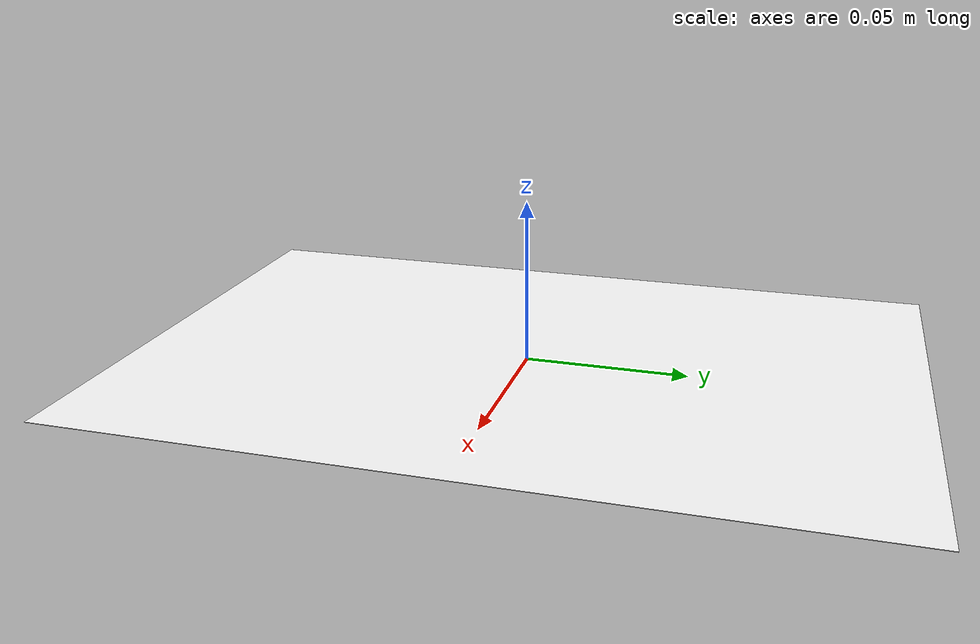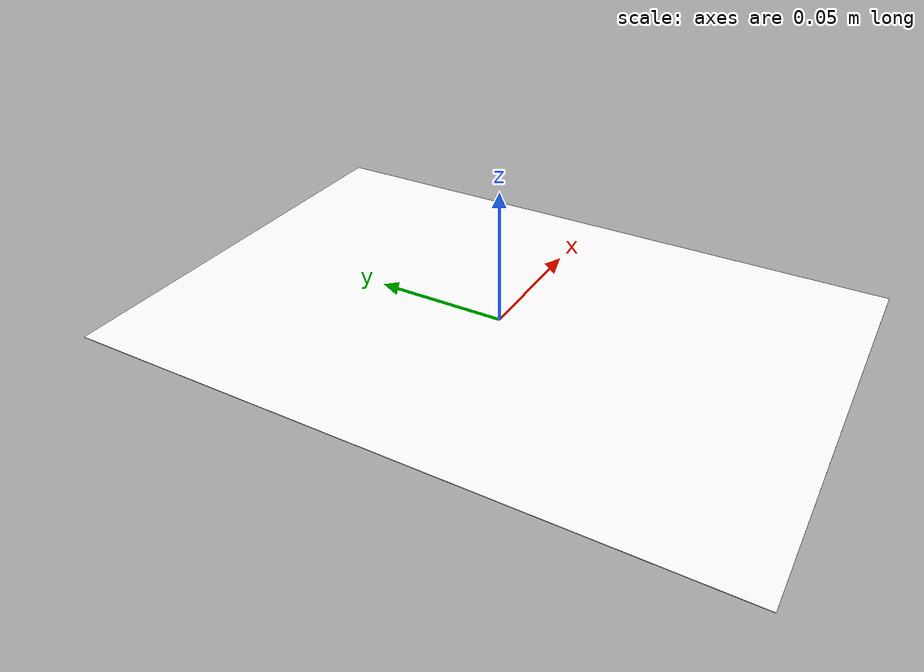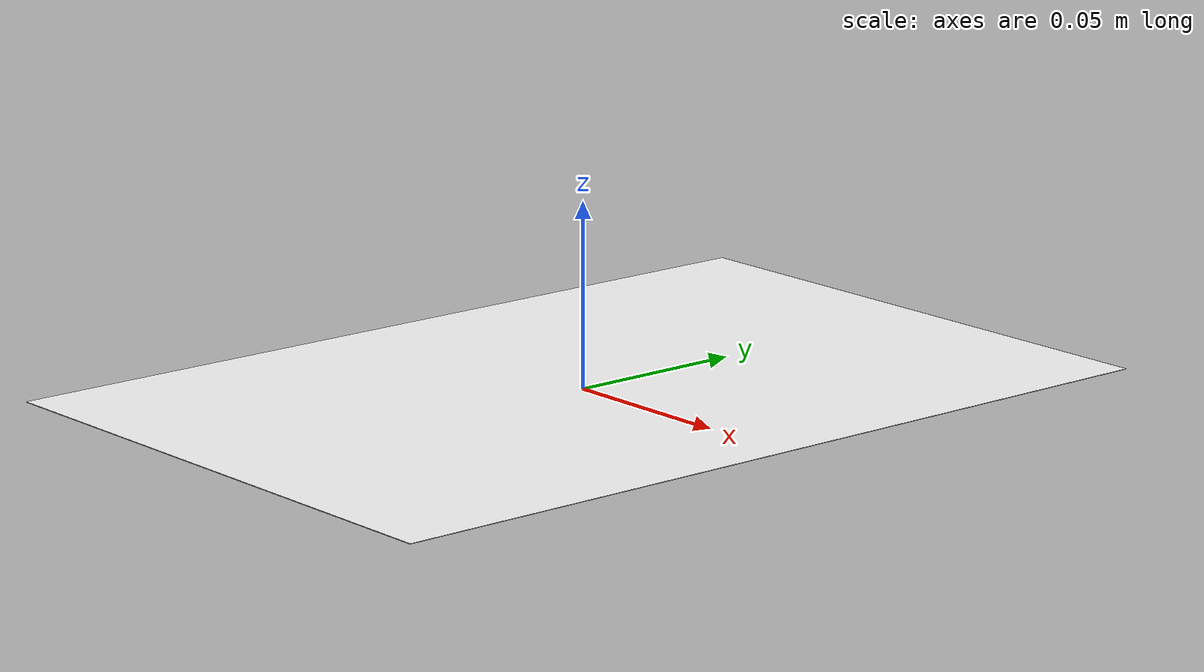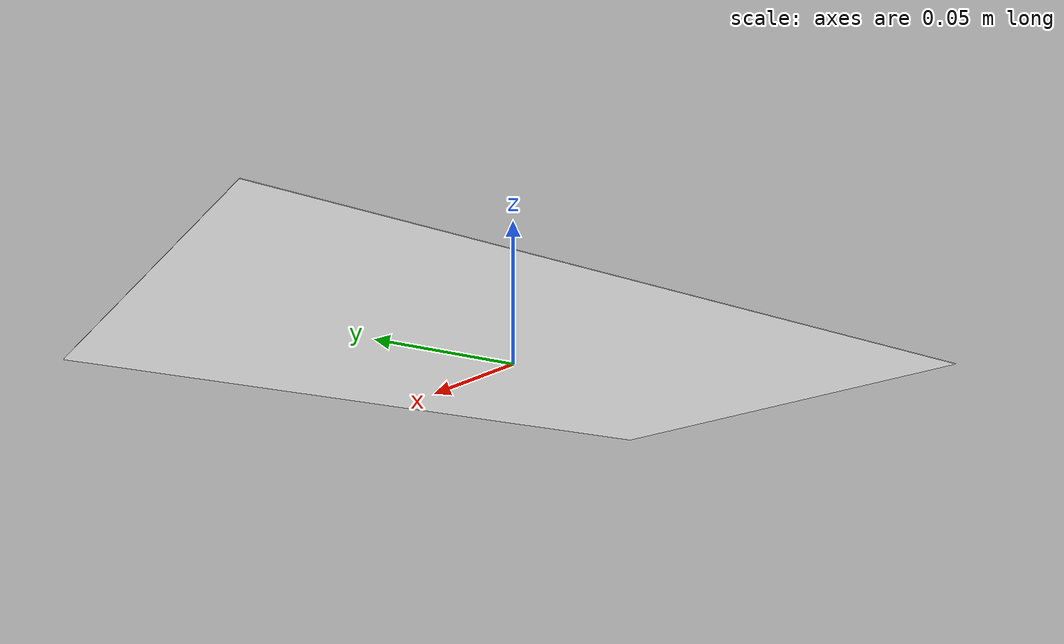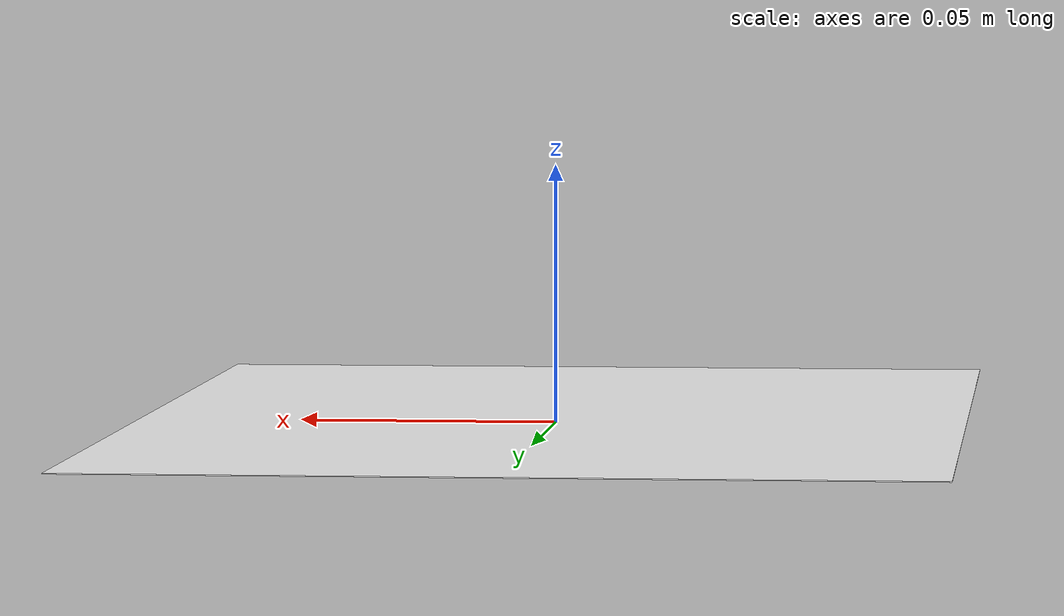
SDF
<?xml version="1.0" ?>
<sdf version="1.6">
  <model name="charuco_board">
    <static>true</static>
    <link name="board">
      <collision name="collision">
        <pose>0 0 0.0005 0 0 0</pose>
        <geometry>
          <box>
            <size>0.16 0.24 0.001</size>
          </box>
        </geometry>
      </collision>
      <visual name="visual">
        <pose>0 0 0.001 0 0 0</pose>
        <geometry>
          <plane>
            <normal>0 0 1</normal>
            <size>0.16 0.24</size>
          </plane>
        </geometry>
        <material>
          <ambient>1 1 1 1</ambient>
          <diffuse>1 1 1 1</diffuse>
          <specular>0 0 0 1</specular>
          <emissive>0 0 0 1</emissive>
          <script>
            <uri>model://charuco_board/materials/scripts</uri>
            <uri>model://charuco_board/materials/textures</uri>
            <name>CharucoBoard/Texture</name>
          </script>
          <pbr>
            <metal>
              <albedo_map>model://charuco_board/materials/textures/charuco_board.png</albedo_map>
            </metal>
          </pbr>
        </material>
      </visual>
    </link>
  </model>
</sdf>
